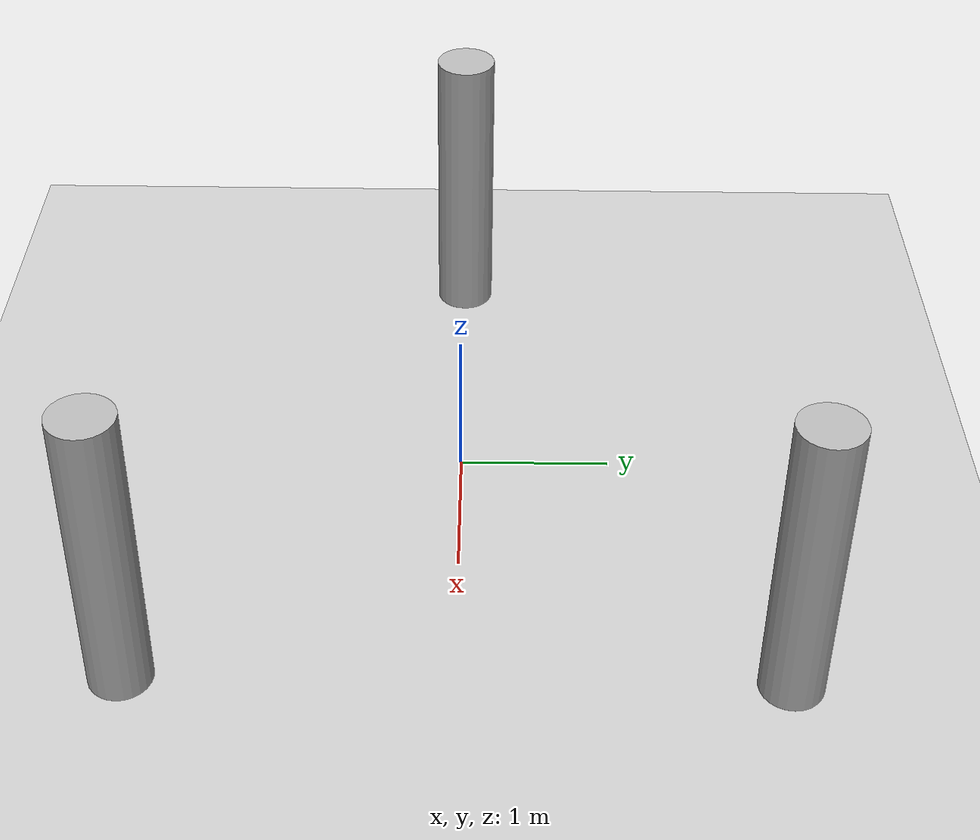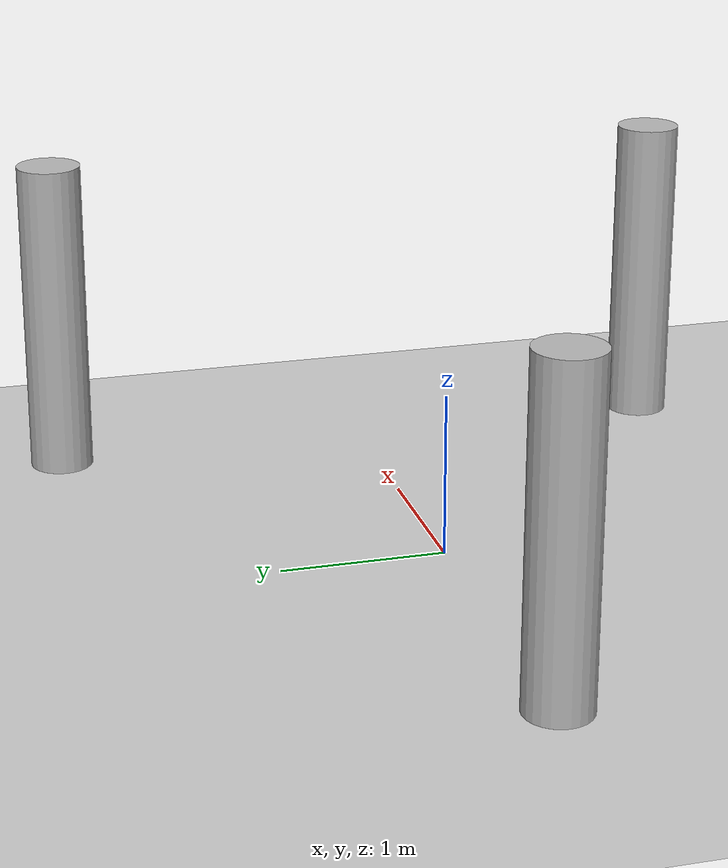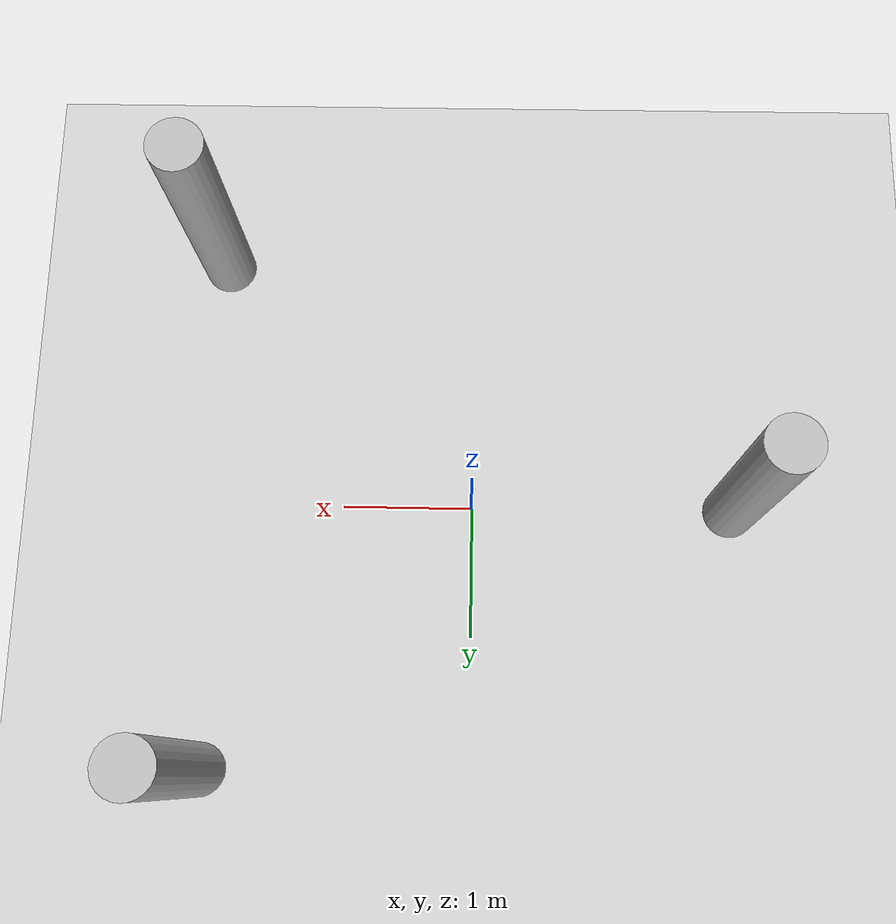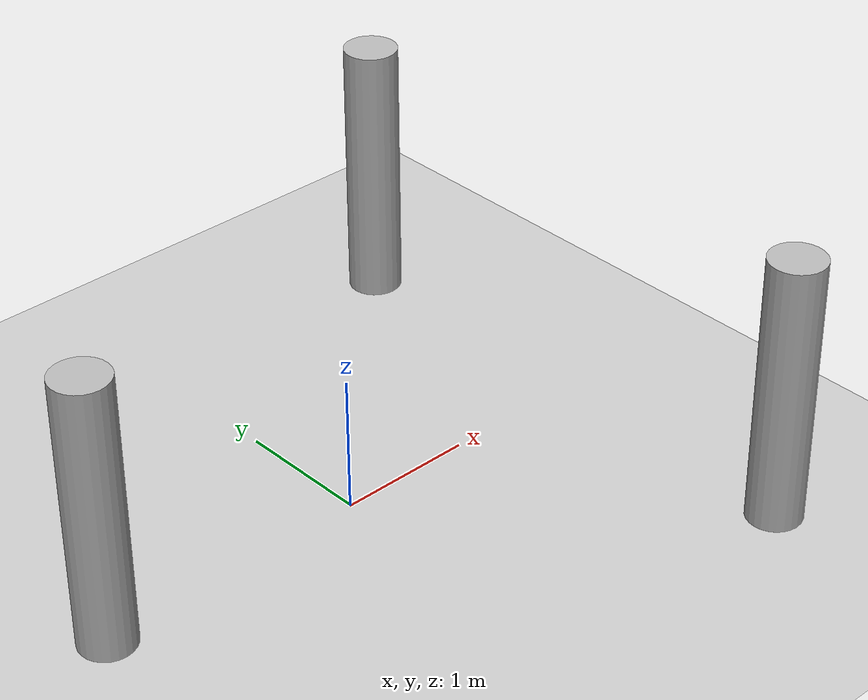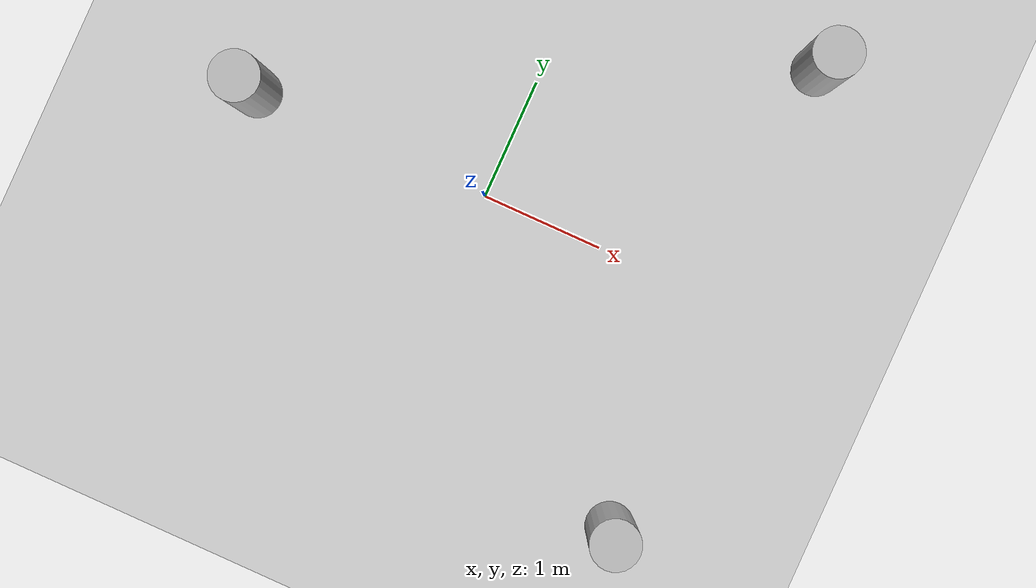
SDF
<?xml version="1.0" ?>
<sdf version="1.6">
  <world name="default">
    <gravity>0 0 -9.81</gravity>
    <scene>
        <shadows>0</shadows>
        <sky>
            <sunrise> 7</sunrise>
            <time>12</time>
            <sunset>19</sunset>
        </sky>
    </scene>
    <physics type='ode'>
      <real_time_update_rate>1000.0</real_time_update_rate>
      <max_step_size>0.001</max_step_size>
      <real_time_factor>1</real_time_factor>
    </physics>
    <!-- A global light source -->
    <include>
      <uri>model://sun</uri>
    </include>
    <!-- A ground plane -->
    <model name="ground_plane">
        <static>true</static>
        <link name="link">
          <collision name="collision">
              <geometry>
                <plane>
                  <normal>0 0 1</normal>
                  <size>100 100</size>
                </plane>
              </geometry>
             <surface>
              <friction>
                <ode>
                  <mu>0.8</mu>
                  <mu2>0.8</mu2>
                </ode>
              </friction>
            </surface>
          </collision>
        <visual name="visual">
          <cast_shadows>false</cast_shadows>
          <geometry>
            <plane>
              <normal>0 0 1</normal>
              <size>100 100</size>
            </plane>
          </geometry>
          <material>
            <script>
              <uri>file://media/materials/scripts/gazebo.material</uri>
              <name>Gazebo/Grey</name>
            </script>
          </material>
        </visual>
      </link>
    </model>

    <model name="tree_1">
      <static>true</static>
      <pose>2 2 1 0 0 0</pose>
      <link name="link">
        <visual name="visual">
          <geometry>
                    <cylinder>
                                <radius>0.2</radius>
                                <length>2.0</length>
                    </cylinder>
          </geometry>
        </visual>
        <collision name="collision">
          <geometry>
                    <cylinder>
                                <radius>0.2</radius>
                                <length>2.0</length>
                    </cylinder>
          </geometry>
        </collision>
      </link>
    </model>

    <model name="tree_2">
      <static>true</static>
      <pose>-2 0 1 0 0 0</pose>
      <link name="link">
        <visual name="visual">
          <geometry>
                    <cylinder>
                                <radius>0.2</radius>
                                <length>2.0</length>
                    </cylinder>
          </geometry>
        </visual>
        <collision name="collision">
          <geometry>
                    <cylinder>
                                <radius>0.2</radius>
                                <length>2.0</length>
                    </cylinder>
          </geometry>
        </collision>
      </link>
    </model>

    <model name="tree_3">
      <static>true</static>
      <pose>2 -2 1 0 0 0</pose>
      <link name="link">
        <visual name="visual">
          <geometry>
                    <cylinder>
                                <radius>0.2</radius>
                                <length>2.0</length>
                    </cylinder>
          </geometry>
        </visual>
        <collision name="collision">
          <geometry>
                    <cylinder>
                                <radius>0.2</radius>
                                <length>2.0</length>
                    </cylinder>
          </geometry>
        </collision>
      </link>
    </model>

  </world>
</sdf>
